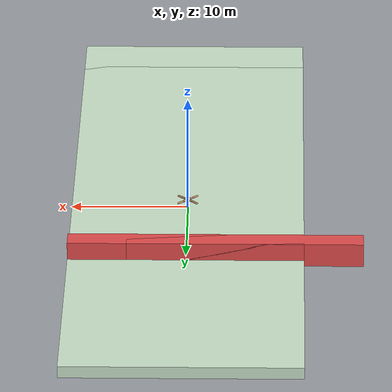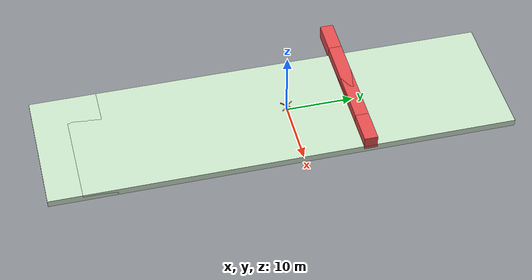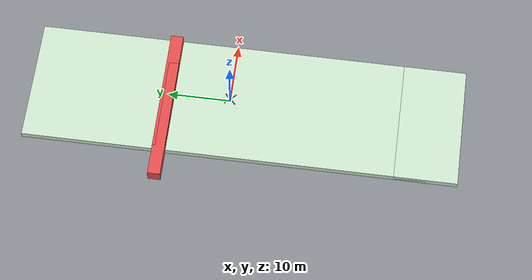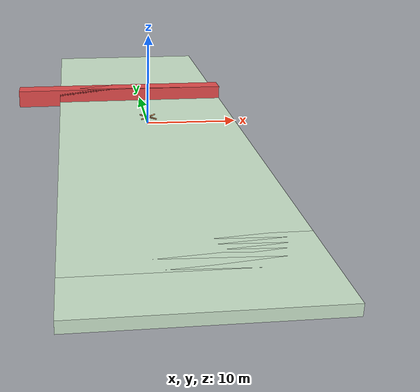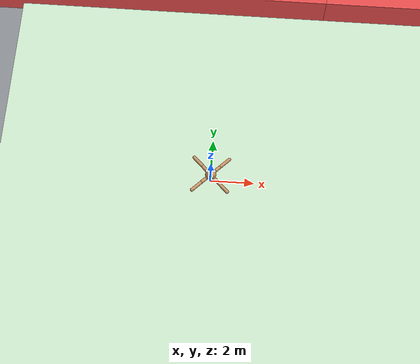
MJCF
<mujoco model="ant">
  <compiler angle="degree" coordinate="local" inertiafromgeom="true"/>
  <option integrator="RK4" timestep="0.01"/>
  <default>
    <joint armature="1" damping="1" limited="true"/>
    <geom conaffinity="1" condim="3" density="5.0" friction="0.5 0.5 0.5" margin="0.01" rgba="0.8 0.6 0.4 1"/>
  </default>
  <asset>
    <texture builtin="gradient" height="100" rgb1="1 1 1" rgb2="0 0 0" type="skybox" width="100"/>
    <texture builtin="flat" height="1278" mark="cross" markrgb="1 1 1" name="texgeom" random="0.01" rgb1="0.8 0.6 0.4" rgb2="0.8 0.6 0.4" type="cube" width="127"/>
    <texture builtin="checker" height="100" name="texplane" rgb1=".1 .2 .3" rgb2=".1 .2 .3" type="2d" width="100"/>
    <texture builtin="checker" height="100" name="texball" rgb1="0 0 0" rgb2="1 1 1" type="2d" width="100"/>
    <material name="MatPlane" reflectance="0.5" shininess="1" specular="1" texrepeat="10 5" texture="texplane"/>
    <material name="MatPlane_goal" reflectance="0.5" shininess="1" specular="1" texrepeat="10 12.5" texture="texplane"/>
    <material name="MatPlane_boxmid" reflectance="0.5" shininess="1" specular="1" texrepeat="10 4" texture="texplane"/>
    <material name="MatPlane_boxback" reflectance="0.5" shininess="1" specular="1" texrepeat="10 6" texture="texplane"/>
    <material name="MatPlane_front" reflectance="0.5" shininess="1" specular="1" texrepeat="10 2.5" texture="texplane"/>
    <material name="MatPlane_gather" reflectance="0.5" shininess="1" specular="1" texrepeat="10 8" texture="texplane"/>
    <material name="geom" texture="texgeom" texuniform="true"/>
  </asset>
  <worldbody>
    <!-- test object -->
    <camera name="main" mode="track" pos="0 0 6" quat="0 0 0 1"/>
    <body name="agent_torso" pos="0 0 0.75">
      <camera name="track" mode="trackcom" pos="0 -5 1.2" xyaxes="1 0 0 0 0 1"/>
      <geom name="agent_torso_geom" pos="0 0 0" size="0.25" type="sphere" priority = "3"/>
      <joint armature="0" damping="0" limited="false" margin="0.01" name="root" pos="0 0 0" type="free"/>
      <body name="agent_front_left_leg" pos="0 0 0">
        <geom fromto="0.0 0.0 0.0 0.2 0.2 0.0" name="aux_1_geom" size="0.08" type="capsule"/>
        <body name="aux_1" pos="0.2 0.2 0">
          <joint axis="0 0 1" name="hip_1" pos="0.0 0.0 0.0" range="-30 30" type="hinge"/>
          <geom fromto="0.0 0.0 0.0 0.2 0.2 0.0" name="agent_left_leg_geom" size="0.08" type="capsule"/>
          <body pos="0.2 0.2 0">
            <joint axis="-1 1 0" name="ankle_1" pos="0.0 0.0 0.0" range="30 70" type="hinge"/>
            <geom fromto="0.0 0.0 0.0 0.4 0.4 0.0" name="agent_left_ankle_geom" size="0.08" type="capsule"/>
          </body>
        </body>
      </body>
      <body name="agent_front_right_leg" pos="0 0 0">
        <geom fromto="0.0 0.0 0.0 -0.2 0.2 0.0" name="aux_2_geom" size="0.08" type="capsule"/>
        <body name="aux_2" pos="-0.2 0.2 0">
          <joint axis="0 0 1" name="hip_2" pos="0.0 0.0 0.0" range="-30 30" type="hinge"/>
          <geom fromto="0.0 0.0 0.0 -0.2 0.2 0.0" name="agent_right_leg_geom" size="0.08" type="capsule"/>
          <body pos="-0.2 0.2 0">
            <joint axis="1 1 0" name="ankle_2" pos="0.0 0.0 0.0" range="-70 -30" type="hinge"/>
            <geom fromto="0.0 0.0 0.0 -0.4 0.4 0.0" name="agent_right_ankle_geom" size="0.08" type="capsule"/>
          </body>
        </body>
      </body>
      <body name="agent_back_leg" pos="0 0 0">
        <geom fromto="0.0 0.0 0.0 -0.2 -0.2 0.0" name="aux_3_geom" size="0.08" type="capsule"/>
        <body name="aux_3" pos="-0.2 -0.2 0">
          <joint axis="0 0 1" name="hip_3" pos="0.0 0.0 0.0" range="-30 30" type="hinge"/>
          <geom fromto="0.0 0.0 0.0 -0.2 -0.2 0.0" name="agent_back_leg_geom" size="0.08" type="capsule"/>
          <body pos="-0.2 -0.2 0">
            <joint axis="-1 1 0" name="ankle_3" pos="0.0 0.0 0.0" range="-70 -30" type="hinge"/>
            <geom fromto="0.0 0.0 0.0 -0.4 -0.4 0.0" name="agent_third_ankle_geom" size="0.08" type="capsule"/>
          </body>
        </body>
      </body>
      <body name="agent_right_back_leg" pos="0 0 0">
        <geom fromto="0.0 0.0 0.0 0.2 -0.2 0.0" name="aux_4_geom" size="0.08" type="capsule"/>
        <body name="aux_4" pos="0.2 -0.2 0">
          <joint axis="0 0 1" name="hip_4" pos="0.0 0.0 0.0" range="-30 30" type="hinge"/>
          <geom fromto="0.0 0.0 0.0 0.2 -0.2 0.0" name="agent_rightback_leg_geom" size="0.08" type="capsule"/>
          <body pos="0.2 -0.2 0">
            <joint axis="1 1 0" name="ankle_4" pos="0.0 0.0 0.0" range="30 70" type="hinge"/>
            <geom fromto="0.0 0.0 0.0 0.4 -0.4 0.0" name="agent_fourth_ankle_geom" size="0.08" type="capsule"/>
          </body>
        </body>
      </body>
    </body>
    <geom name="curbleft" pos="-5 10 0.5" conaffinity="1" rgba="0.9 0.3 0.3 1" size="10 1 1" type="box"/>
    <geom name="curbright" pos="0 10 0.5" conaffinity="1" rgba="0.9 0.3 0.3 1" size="10 1 1" type="box"/>

    <light cutoff="100" diffuse="1 1 1" dir="-0 0 -1.3" directional="true" exponent="1" pos="0 0 1.3" specular=".1 .1 .1"/>
        <geom name="antgoal1_plane" pos="0 -32 -0.5" conaffinity="1" rgba="0.8 0.9 0.8 1" friction="1 1 1" material="MatPlane_goal" size="10 5 0.5" type="box" priority = "3"/>

    <geom name="antgoal0_plane" pos="0 0 -0.5" conaffinity="1" rgba="0.8 0.9 0.8 1" friction="1 1 1" material="MatPlane_goal" size="10 32 0.5" type="box" priority = "3"/>

  </worldbody>
  <actuator>
    <motor ctrllimited="true" ctrlrange="-1.0 1.0" joint="hip_4" gear="150"/>
    <motor ctrllimited="true" ctrlrange="-1.0 1.0" joint="ankle_4" gear="150"/>
    <motor ctrllimited="true" ctrlrange="-1.0 1.0" joint="hip_1" gear="150"/>
    <motor ctrllimited="true" ctrlrange="-1.0 1.0" joint="ankle_1" gear="150"/>
    <motor ctrllimited="true" ctrlrange="-1.0 1.0" joint="hip_2" gear="150"/>
    <motor ctrllimited="true" ctrlrange="-1.0 1.0" joint="ankle_2" gear="150"/>
    <motor ctrllimited="true" ctrlrange="-1.0 1.0" joint="hip_3" gear="150"/>
    <motor ctrllimited="true" ctrlrange="-1.0 1.0" joint="ankle_3" gear="150"/>
  </actuator>
</mujoco>
